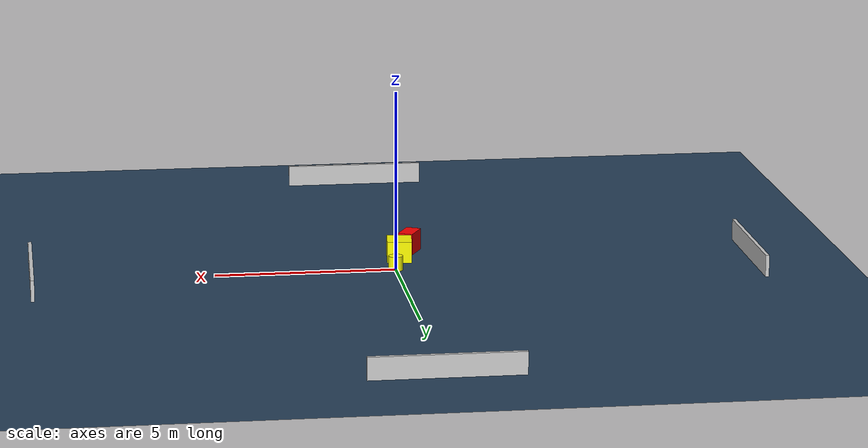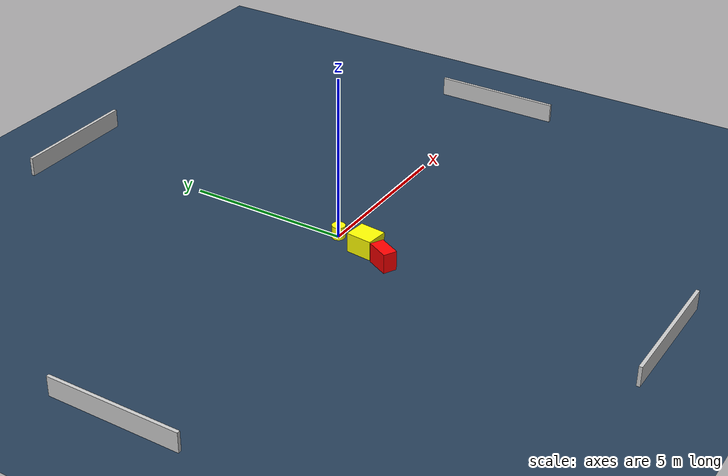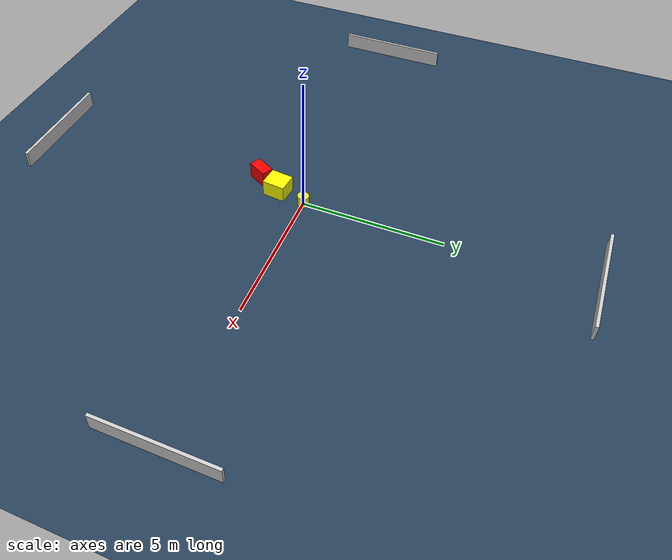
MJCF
<?xml version="1.0" ?>
<mujoco model="generated_environment">
  <option timestep="0.01" integrator="RK4" cone="elliptic"/>
  <default>
    <geom density="1"/>
  </default>
  <asset>
    <texture builtin="gradient" height="3072" name="skybox" rgb1="0.3 0.5 0.7" rgb2="0 0 0" type="skybox" width="512"/>
    <texture builtin="checker" height="300" name="groundplane" rgb1="0.2 0.3 0.4" rgb2="0.1 0.2 0.3" type="2d" width="300"/>
    <material name="groundplane" reflectance="0.2" texrepeat="5 5" texture="groundplane"/>
  </asset>
  <worldbody>
    <light dir="0 0 -1" directional="true" pos="0 0 1.5"/>
    <geom condim="3" friction="0.5 0.005 0.001" material="groundplane" name="floor" pos="0 0 0" size="0 0 0.05" type="plane"/>
    <body name="walls">
      <geom name="wall_1" condim="4" pos="-10.0 0.0 0.3" rgba="0.800000011920929 0.800000011920929 0.800000011920929 1.0" size="0.05 2.0 0.3" type="box"/>
      <geom name="wall_2" condim="4" pos="10.0 0.0 0.3" rgba="0.800000011920929 0.800000011920929 0.800000011920929 1.0" size="0.05 2.0 0.3" type="box"/>
      <geom name="wall_3" condim="4" pos="0.0 -10.0 0.3" rgba="0.800000011920929 0.800000011920929 0.800000011920929 1.0" size="2.0 0.05 0.3" type="box"/>
      <geom name="wall_4" condim="4" pos="0.0 10.0 0.3" rgba="0.800000011920929 0.800000011920929 0.800000011920929 1.0" size="2.0 0.05 0.3" type="box"/>
    </body>
    <body name="robot">
      <joint name="joint_x" type="slide" pos="0 0 0" axis="1 0 0"/>
      <joint name="joint_y" type="slide" pos="0 0 0" axis="0 1 0"/>
      <geom name="robot" type="cylinder" pos="0.0 0.0 0.2" size="0.2 0.2 0.0" mass="5.0" friction="1.0 0.005 0.0001" condim="4" rgba="1.0 1.0 0.0 1.0"/>
    </body>
    <body name="obstacle_1_movable">
      <geom name="obstacle_1_movable" condim="4" pos="-0.23167009321453627 -1.0578479032566626 0.3" euler="0 0 174.1087602387588" friction="0.0 0.005 0.001" rgba="1.0 1.0 0.0 1.0" size="0.34325530857906283 0.3992398275884888 0.3" type="box" mass="0.1"/>
      <joint type="free"/>
    </body>
    <body name="obstacle_2_static">
      <geom name="obstacle_2_static" condim="4" pos="-0.6320328075213135 -1.8751278284574944 0.3" euler="0 0 62.5962456166272" friction="0.0 0.005 0.001" rgba="1.0 0.0 0.0 1.0" size="0.35975169936453355 0.20988680205809163 0.3" type="box"/>
    </body>
  </worldbody>
  <actuator>
    <motor name="actuator_x" joint="joint_x" gear="1" ctrlrange="-1 1"/>
    <motor name="actuator_y" joint="joint_y" gear="1" ctrlrange="-1 1"/>
  </actuator>
</mujoco>
